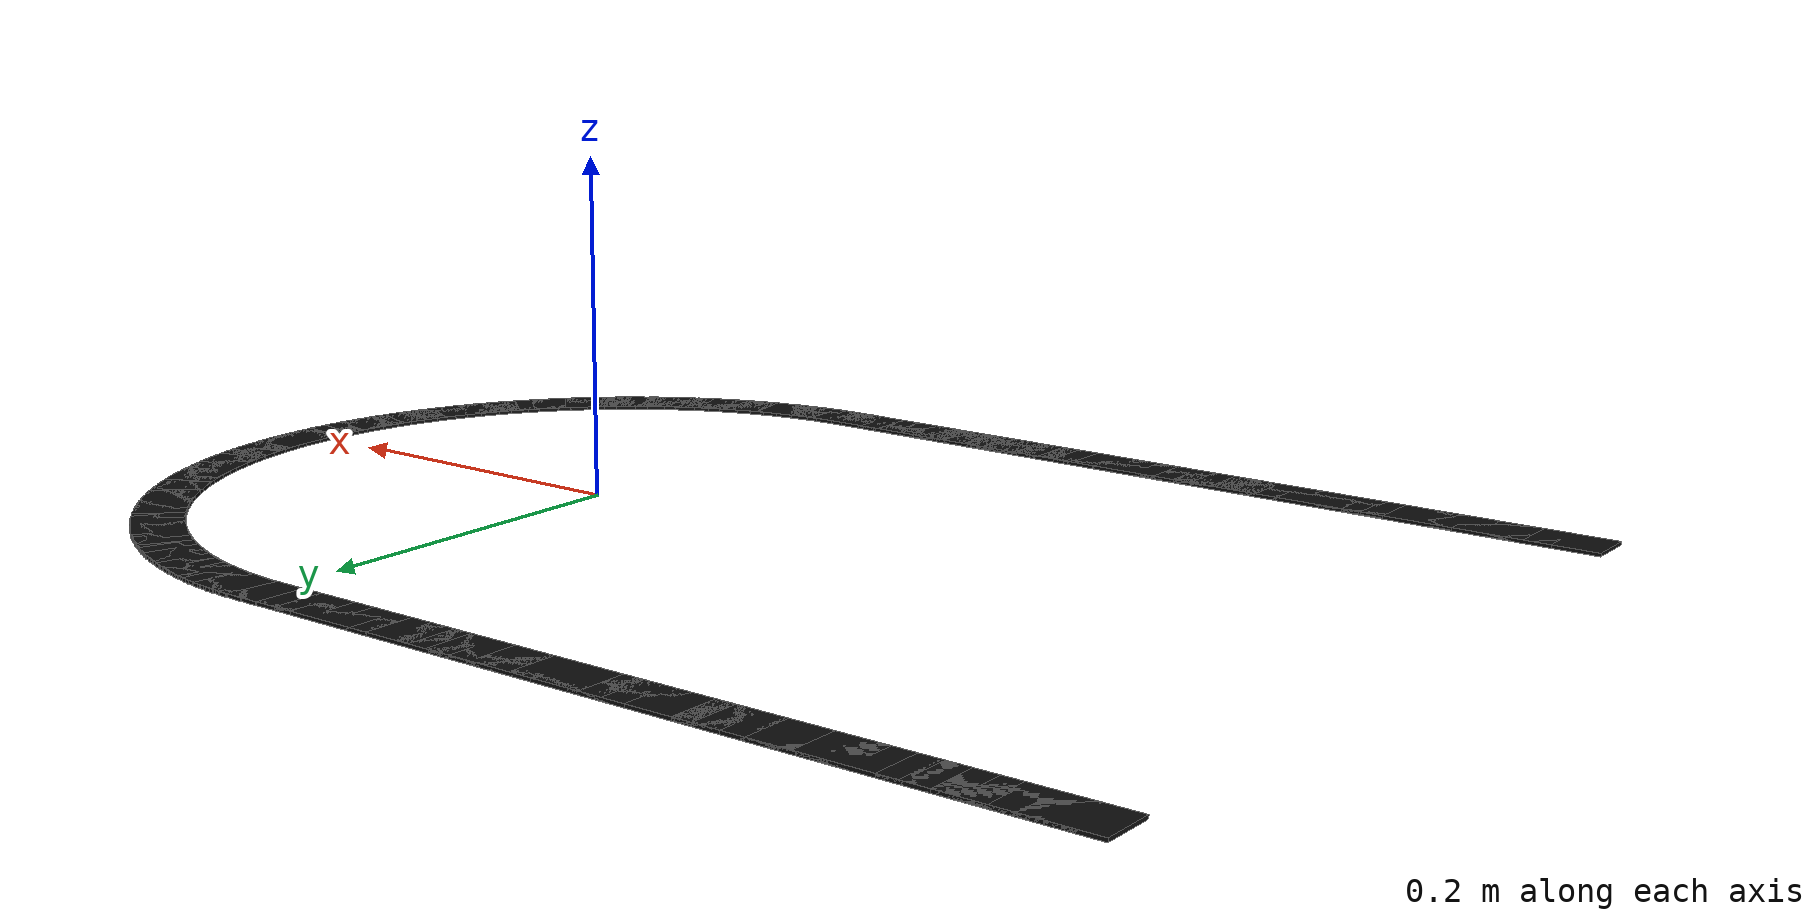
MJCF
<mujoco model="track_hairpin">
  <worldbody>
    <geom name="line_0" type="box" size="0.0219 0.015 0.001" pos="-0.4931 -0.2500 0.001" quat="1.000000 0 0 0.000000" contype="0" conaffinity="0" group="2" rgba="0.05 0.05 0.05 1"/>
    <geom name="line_1" type="box" size="0.0219 0.015 0.001" pos="-0.4792 -0.2500 0.001" quat="1.000000 0 0 0.000000" contype="0" conaffinity="0" group="2" rgba="0.05 0.05 0.05 1"/>
    <geom name="line_2" type="box" size="0.0219 0.015 0.001" pos="-0.4653 -0.2500 0.001" quat="1.000000 0 0 0.000000" contype="0" conaffinity="0" group="2" rgba="0.05 0.05 0.05 1"/>
    <geom name="line_3" type="box" size="0.0219 0.015 0.001" pos="-0.4514 -0.2500 0.001" quat="1.000000 0 0 0.000000" contype="0" conaffinity="0" group="2" rgba="0.05 0.05 0.05 1"/>
    <geom name="line_4" type="box" size="0.0219 0.015 0.001" pos="-0.4375 -0.2500 0.001" quat="1.000000 0 0 0.000000" contype="0" conaffinity="0" group="2" rgba="0.05 0.05 0.05 1"/>
    <geom name="line_5" type="box" size="0.0219 0.015 0.001" pos="-0.4236 -0.2500 0.001" quat="1.000000 0 0 0.000000" contype="0" conaffinity="0" group="2" rgba="0.05 0.05 0.05 1"/>
    <geom name="line_6" type="box" size="0.0219 0.015 0.001" pos="-0.4097 -0.2500 0.001" quat="1.000000 0 0 0.000000" contype="0" conaffinity="0" group="2" rgba="0.05 0.05 0.05 1"/>
    <geom name="line_7" type="box" size="0.0219 0.015 0.001" pos="-0.3958 -0.2500 0.001" quat="1.000000 0 0 0.000000" contype="0" conaffinity="0" group="2" rgba="0.05 0.05 0.05 1"/>
    <geom name="line_8" type="box" size="0.0219 0.015 0.001" pos="-0.3819 -0.2500 0.001" quat="1.000000 0 0 0.000000" contype="0" conaffinity="0" group="2" rgba="0.05 0.05 0.05 1"/>
    <geom name="line_9" type="box" size="0.0219 0.015 0.001" pos="-0.3681 -0.2500 0.001" quat="1.000000 0 0 0.000000" contype="0" conaffinity="0" group="2" rgba="0.05 0.05 0.05 1"/>
    <geom name="line_10" type="box" size="0.0219 0.015 0.001" pos="-0.3542 -0.2500 0.001" quat="1.000000 0 0 0.000000" contype="0" conaffinity="0" group="2" rgba="0.05 0.05 0.05 1"/>
    <geom name="line_11" type="box" size="0.0219 0.015 0.001" pos="-0.3403 -0.2500 0.001" quat="1.000000 0 0 0.000000" contype="0" conaffinity="0" group="2" rgba="0.05 0.05 0.05 1"/>
    <geom name="line_12" type="box" size="0.0219 0.015 0.001" pos="-0.3264 -0.2500 0.001" quat="1.000000 0 0 0.000000" contype="0" conaffinity="0" group="2" rgba="0.05 0.05 0.05 1"/>
    <geom name="line_13" type="box" size="0.0219 0.015 0.001" pos="-0.3125 -0.2500 0.001" quat="1.000000 0 0 0.000000" contype="0" conaffinity="0" group="2" rgba="0.05 0.05 0.05 1"/>
    <geom name="line_14" type="box" size="0.0219 0.015 0.001" pos="-0.2986 -0.2500 0.001" quat="1.000000 0 0 0.000000" contype="0" conaffinity="0" group="2" rgba="0.05 0.05 0.05 1"/>
    <geom name="line_15" type="box" size="0.0219 0.015 0.001" pos="-0.2847 -0.2500 0.001" quat="1.000000 0 0 0.000000" contype="0" conaffinity="0" group="2" rgba="0.05 0.05 0.05 1"/>
    <geom name="line_16" type="box" size="0.0219 0.015 0.001" pos="-0.2708 -0.2500 0.001" quat="1.000000 0 0 0.000000" contype="0" conaffinity="0" group="2" rgba="0.05 0.05 0.05 1"/>
    <geom name="line_17" type="box" size="0.0219 0.015 0.001" pos="-0.2569 -0.2500 0.001" quat="1.000000 0 0 0.000000" contype="0" conaffinity="0" group="2" rgba="0.05 0.05 0.05 1"/>
    <geom name="line_18" type="box" size="0.0219 0.015 0.001" pos="-0.2431 -0.2500 0.001" quat="1.000000 0 0 0.000000" contype="0" conaffinity="0" group="2" rgba="0.05 0.05 0.05 1"/>
    <geom name="line_19" type="box" size="0.0219 0.015 0.001" pos="-0.2292 -0.2500 0.001" quat="1.000000 0 0 0.000000" contype="0" conaffinity="0" group="2" rgba="0.05 0.05 0.05 1"/>
    <geom name="line_20" type="box" size="0.0219 0.015 0.001" pos="-0.2153 -0.2500 0.001" quat="1.000000 0 0 0.000000" contype="0" conaffinity="0" group="2" rgba="0.05 0.05 0.05 1"/>
    <geom name="line_21" type="box" size="0.0219 0.015 0.001" pos="-0.2014 -0.2500 0.001" quat="1.000000 0 0 0.000000" contype="0" conaffinity="0" group="2" rgba="0.05 0.05 0.05 1"/>
    <geom name="line_22" type="box" size="0.0219 0.015 0.001" pos="-0.1875 -0.2500 0.001" quat="1.000000 0 0 0.000000" contype="0" conaffinity="0" group="2" rgba="0.05 0.05 0.05 1"/>
    <geom name="line_23" type="box" size="0.0219 0.015 0.001" pos="-0.1736 -0.2500 0.001" quat="1.000000 0 0 0.000000" contype="0" conaffinity="0" group="2" rgba="0.05 0.05 0.05 1"/>
    <geom name="line_24" type="box" size="0.0219 0.015 0.001" pos="-0.1597 -0.2500 0.001" quat="1.000000 0 0 0.000000" contype="0" conaffinity="0" group="2" rgba="0.05 0.05 0.05 1"/>
    <geom name="line_25" type="box" size="0.0219 0.015 0.001" pos="-0.1458 -0.2500 0.001" quat="1.000000 0 0 0.000000" contype="0" conaffinity="0" group="2" rgba="0.05 0.05 0.05 1"/>
    <geom name="line_26" type="box" size="0.0219 0.015 0.001" pos="-0.1319 -0.2500 0.001" quat="1.000000 0 0 0.000000" contype="0" conaffinity="0" group="2" rgba="0.05 0.05 0.05 1"/>
    <geom name="line_27" type="box" size="0.0219 0.015 0.001" pos="-0.1181 -0.2500 0.001" quat="1.000000 0 0 0.000000" contype="0" conaffinity="0" group="2" rgba="0.05 0.05 0.05 1"/>
    <geom name="line_28" type="box" size="0.0219 0.015 0.001" pos="-0.1042 -0.2500 0.001" quat="1.000000 0 0 0.000000" contype="0" conaffinity="0" group="2" rgba="0.05 0.05 0.05 1"/>
    <geom name="line_29" type="box" size="0.0219 0.015 0.001" pos="-0.0903 -0.2500 0.001" quat="1.000000 0 0 0.000000" contype="0" conaffinity="0" group="2" rgba="0.05 0.05 0.05 1"/>
    <geom name="line_30" type="box" size="0.0219 0.015 0.001" pos="-0.0764 -0.2500 0.001" quat="1.000000 0 0 0.000000" contype="0" conaffinity="0" group="2" rgba="0.05 0.05 0.05 1"/>
    <geom name="line_31" type="box" size="0.0219 0.015 0.001" pos="-0.0625 -0.2500 0.001" quat="1.000000 0 0 0.000000" contype="0" conaffinity="0" group="2" rgba="0.05 0.05 0.05 1"/>
    <geom name="line_32" type="box" size="0.0219 0.015 0.001" pos="-0.0486 -0.2500 0.001" quat="1.000000 0 0 0.000000" contype="0" conaffinity="0" group="2" rgba="0.05 0.05 0.05 1"/>
    <geom name="line_33" type="box" size="0.0219 0.015 0.001" pos="-0.0347 -0.2500 0.001" quat="1.000000 0 0 0.000000" contype="0" conaffinity="0" group="2" rgba="0.05 0.05 0.05 1"/>
    <geom name="line_34" type="box" size="0.0219 0.015 0.001" pos="-0.0208 -0.2500 0.001" quat="1.000000 0 0 0.000000" contype="0" conaffinity="0" group="2" rgba="0.05 0.05 0.05 1"/>
    <geom name="line_35" type="box" size="0.0219 0.015 0.001" pos="-0.0069 -0.2500 0.001" quat="1.000000 0 0 0.000000" contype="0" conaffinity="0" group="2" rgba="0.05 0.05 0.05 1"/>
    <geom name="line_36" type="box" size="0.0205 0.015 0.001" pos="0.0055 -0.2499 0.001" quat="0.999941 0 0 0.010908" contype="0" conaffinity="0" group="2" rgba="0.05 0.05 0.05 1"/>
    <geom name="line_37" type="box" size="0.0205 0.015 0.001" pos="0.0163 -0.2494 0.001" quat="0.999465 0 0 0.032719" contype="0" conaffinity="0" group="2" rgba="0.05 0.05 0.05 1"/>
    <geom name="line_38" type="box" size="0.0205 0.015 0.001" pos="0.0272 -0.2485 0.001" quat="0.998513 0 0 0.054515" contype="0" conaffinity="0" group="2" rgba="0.05 0.05 0.05 1"/>
    <geom name="line_39" type="box" size="0.0205 0.015 0.001" pos="0.0380 -0.2470 0.001" quat="0.997086 0 0 0.076284" contype="0" conaffinity="0" group="2" rgba="0.05 0.05 0.05 1"/>
    <geom name="line_40" type="box" size="0.0205 0.015 0.001" pos="0.0488 -0.2451 0.001" quat="0.995185 0 0 0.098017" contype="0" conaffinity="0" group="2" rgba="0.05 0.05 0.05 1"/>
    <geom name="line_41" type="box" size="0.0205 0.015 0.001" pos="0.0594 -0.2428 0.001" quat="0.992810 0 0 0.119704" contype="0" conaffinity="0" group="2" rgba="0.05 0.05 0.05 1"/>
    <geom name="line_42" type="box" size="0.0205 0.015 0.001" pos="0.0699 -0.2400 0.001" quat="0.989962 0 0 0.141333" contype="0" conaffinity="0" group="2" rgba="0.05 0.05 0.05 1"/>
    <geom name="line_43" type="box" size="0.0205 0.015 0.001" pos="0.0803 -0.2367 0.001" quat="0.986643 0 0 0.162895" contype="0" conaffinity="0" group="2" rgba="0.05 0.05 0.05 1"/>
    <geom name="line_44" type="box" size="0.0205 0.015 0.001" pos="0.0906 -0.2329 0.001" quat="0.982855 0 0 0.184380" contype="0" conaffinity="0" group="2" rgba="0.05 0.05 0.05 1"/>
    <geom name="line_45" type="box" size="0.0205 0.015 0.001" pos="0.1007 -0.2288 0.001" quat="0.978599 0 0 0.205777" contype="0" conaffinity="0" group="2" rgba="0.05 0.05 0.05 1"/>
    <geom name="line_46" type="box" size="0.0205 0.015 0.001" pos="0.1105 -0.2242 0.001" quat="0.973877 0 0 0.227076" contype="0" conaffinity="0" group="2" rgba="0.05 0.05 0.05 1"/>
    <geom name="line_47" type="box" size="0.0205 0.015 0.001" pos="0.1202 -0.2191 0.001" quat="0.968692 0 0 0.248267" contype="0" conaffinity="0" group="2" rgba="0.05 0.05 0.05 1"/>
    <geom name="line_48" type="box" size="0.0205 0.015 0.001" pos="0.1297 -0.2137 0.001" quat="0.963045 0 0 0.269340" contype="0" conaffinity="0" group="2" rgba="0.05 0.05 0.05 1"/>
    <geom name="line_49" type="box" size="0.0205 0.015 0.001" pos="0.1389 -0.2078 0.001" quat="0.956940 0 0 0.290285" contype="0" conaffinity="0" group="2" rgba="0.05 0.05 0.05 1"/>
    <geom name="line_50" type="box" size="0.0205 0.015 0.001" pos="0.1478 -0.2016 0.001" quat="0.950380 0 0 0.311091" contype="0" conaffinity="0" group="2" rgba="0.05 0.05 0.05 1"/>
    <geom name="line_51" type="box" size="0.0205 0.015 0.001" pos="0.1564 -0.1949 0.001" quat="0.943368 0 0 0.331750" contype="0" conaffinity="0" group="2" rgba="0.05 0.05 0.05 1"/>
    <geom name="line_52" type="box" size="0.0205 0.015 0.001" pos="0.1648 -0.1879 0.001" quat="0.935906 0 0 0.352250" contype="0" conaffinity="0" group="2" rgba="0.05 0.05 0.05 1"/>
    <geom name="line_53" type="box" size="0.0205 0.015 0.001" pos="0.1728 -0.1805 0.001" quat="0.927999 0 0 0.372583" contype="0" conaffinity="0" group="2" rgba="0.05 0.05 0.05 1"/>
    <geom name="line_54" type="box" size="0.0205 0.015 0.001" pos="0.1805 -0.1728 0.001" quat="0.919650 0 0 0.392738" contype="0" conaffinity="0" group="2" rgba="0.05 0.05 0.05 1"/>
    <geom name="line_55" type="box" size="0.0205 0.015 0.001" pos="0.1879 -0.1648 0.001" quat="0.910864 0 0 0.412707" contype="0" conaffinity="0" group="2" rgba="0.05 0.05 0.05 1"/>
    <geom name="line_56" type="box" size="0.0205 0.015 0.001" pos="0.1949 -0.1564 0.001" quat="0.901644 0 0 0.432479" contype="0" conaffinity="0" group="2" rgba="0.05 0.05 0.05 1"/>
    <geom name="line_57" type="box" size="0.0205 0.015 0.001" pos="0.2016 -0.1478 0.001" quat="0.891995 0 0 0.452046" contype="0" conaffinity="0" group="2" rgba="0.05 0.05 0.05 1"/>
    <geom name="line_58" type="box" size="0.0205 0.015 0.001" pos="0.2078 -0.1389 0.001" quat="0.881921 0 0 0.471397" contype="0" conaffinity="0" group="2" rgba="0.05 0.05 0.05 1"/>
    <geom name="line_59" type="box" size="0.0205 0.015 0.001" pos="0.2137 -0.1297 0.001" quat="0.871428 0 0 0.490524" contype="0" conaffinity="0" group="2" rgba="0.05 0.05 0.05 1"/>
    <geom name="line_60" type="box" size="0.0205 0.015 0.001" pos="0.2191 -0.1202 0.001" quat="0.860520 0 0 0.509417" contype="0" conaffinity="0" group="2" rgba="0.05 0.05 0.05 1"/>
    <geom name="line_61" type="box" size="0.0205 0.015 0.001" pos="0.2242 -0.1105 0.001" quat="0.849202 0 0 0.528068" contype="0" conaffinity="0" group="2" rgba="0.05 0.05 0.05 1"/>
    <geom name="line_62" type="box" size="0.0205 0.015 0.001" pos="0.2288 -0.1007 0.001" quat="0.837480 0 0 0.546467" contype="0" conaffinity="0" group="2" rgba="0.05 0.05 0.05 1"/>
    <geom name="line_63" type="box" size="0.0205 0.015 0.001" pos="0.2329 -0.0906 0.001" quat="0.825360 0 0 0.564607" contype="0" conaffinity="0" group="2" rgba="0.05 0.05 0.05 1"/>
    <geom name="line_64" type="box" size="0.0205 0.015 0.001" pos="0.2367 -0.0803 0.001" quat="0.812847 0 0 0.582478" contype="0" conaffinity="0" group="2" rgba="0.05 0.05 0.05 1"/>
    <geom name="line_65" type="box" size="0.0205 0.015 0.001" pos="0.2400 -0.0699 0.001" quat="0.799947 0 0 0.600071" contype="0" conaffinity="0" group="2" rgba="0.05 0.05 0.05 1"/>
    <geom name="line_66" type="box" size="0.0205 0.015 0.001" pos="0.2428 -0.0594 0.001" quat="0.786666 0 0 0.617379" contype="0" conaffinity="0" group="2" rgba="0.05 0.05 0.05 1"/>
    <geom name="line_67" type="box" size="0.0205 0.015 0.001" pos="0.2451 -0.0488 0.001" quat="0.773010 0 0 0.634393" contype="0" conaffinity="0" group="2" rgba="0.05 0.05 0.05 1"/>
    <geom name="line_68" type="box" size="0.0205 0.015 0.001" pos="0.2470 -0.0380 0.001" quat="0.758987 0 0 0.651105" contype="0" conaffinity="0" group="2" rgba="0.05 0.05 0.05 1"/>
    <geom name="line_69" type="box" size="0.0205 0.015 0.001" pos="0.2485 -0.0272 0.001" quat="0.744603 0 0 0.667508" contype="0" conaffinity="0" group="2" rgba="0.05 0.05 0.05 1"/>
    <geom name="line_70" type="box" size="0.0205 0.015 0.001" pos="0.2494 -0.0163 0.001" quat="0.729864 0 0 0.683592" contype="0" conaffinity="0" group="2" rgba="0.05 0.05 0.05 1"/>
    <geom name="line_71" type="box" size="0.0205 0.015 0.001" pos="0.2499 -0.0055 0.001" quat="0.714778 0 0 0.699352" contype="0" conaffinity="0" group="2" rgba="0.05 0.05 0.05 1"/>
    <geom name="line_72" type="box" size="0.0205 0.015 0.001" pos="0.2499 0.0055 0.001" quat="0.699352 0 0 0.714778" contype="0" conaffinity="0" group="2" rgba="0.05 0.05 0.05 1"/>
    <geom name="line_73" type="box" size="0.0205 0.015 0.001" pos="0.2494 0.0163 0.001" quat="0.683592 0 0 0.729864" contype="0" conaffinity="0" group="2" rgba="0.05 0.05 0.05 1"/>
    <geom name="line_74" type="box" size="0.0205 0.015 0.001" pos="0.2485 0.0272 0.001" quat="0.667508 0 0 0.744603" contype="0" conaffinity="0" group="2" rgba="0.05 0.05 0.05 1"/>
    <geom name="line_75" type="box" size="0.0205 0.015 0.001" pos="0.2470 0.0380 0.001" quat="0.651105 0 0 0.758987" contype="0" conaffinity="0" group="2" rgba="0.05 0.05 0.05 1"/>
    <geom name="line_76" type="box" size="0.0205 0.015 0.001" pos="0.2451 0.0488 0.001" quat="0.634393 0 0 0.773010" contype="0" conaffinity="0" group="2" rgba="0.05 0.05 0.05 1"/>
    <geom name="line_77" type="box" size="0.0205 0.015 0.001" pos="0.2428 0.0594 0.001" quat="0.617379 0 0 0.786666" contype="0" conaffinity="0" group="2" rgba="0.05 0.05 0.05 1"/>
    <geom name="line_78" type="box" size="0.0205 0.015 0.001" pos="0.2400 0.0699 0.001" quat="0.600071 0 0 0.799947" contype="0" conaffinity="0" group="2" rgba="0.05 0.05 0.05 1"/>
    <geom name="line_79" type="box" size="0.0205 0.015 0.001" pos="0.2367 0.0803 0.001" quat="0.582478 0 0 0.812847" contype="0" conaffinity="0" group="2" rgba="0.05 0.05 0.05 1"/>
    <geom name="line_80" type="box" size="0.0205 0.015 0.001" pos="0.2329 0.0906 0.001" quat="0.564607 0 0 0.825360" contype="0" conaffinity="0" group="2" rgba="0.05 0.05 0.05 1"/>
    <geom name="line_81" type="box" size="0.0205 0.015 0.001" pos="0.2288 0.1007 0.001" quat="0.546467 0 0 0.837480" contype="0" conaffinity="0" group="2" rgba="0.05 0.05 0.05 1"/>
    <geom name="line_82" type="box" size="0.0205 0.015 0.001" pos="0.2242 0.1105 0.001" quat="0.528068 0 0 0.849202" contype="0" conaffinity="0" group="2" rgba="0.05 0.05 0.05 1"/>
    <geom name="line_83" type="box" size="0.0205 0.015 0.001" pos="0.2191 0.1202 0.001" quat="0.509417 0 0 0.860520" contype="0" conaffinity="0" group="2" rgba="0.05 0.05 0.05 1"/>
    <geom name="line_84" type="box" size="0.0205 0.015 0.001" pos="0.2137 0.1297 0.001" quat="0.490524 0 0 0.871428" contype="0" conaffinity="0" group="2" rgba="0.05 0.05 0.05 1"/>
    <geom name="line_85" type="box" size="0.0205 0.015 0.001" pos="0.2078 0.1389 0.001" quat="0.471397 0 0 0.881921" contype="0" conaffinity="0" group="2" rgba="0.05 0.05 0.05 1"/>
    <geom name="line_86" type="box" size="0.0205 0.015 0.001" pos="0.2016 0.1478 0.001" quat="0.452046 0 0 0.891995" contype="0" conaffinity="0" group="2" rgba="0.05 0.05 0.05 1"/>
    <geom name="line_87" type="box" size="0.0205 0.015 0.001" pos="0.1949 0.1564 0.001" quat="0.432479 0 0 0.901644" contype="0" conaffinity="0" group="2" rgba="0.05 0.05 0.05 1"/>
    <geom name="line_88" type="box" size="0.0205 0.015 0.001" pos="0.1879 0.1648 0.001" quat="0.412707 0 0 0.910864" contype="0" conaffinity="0" group="2" rgba="0.05 0.05 0.05 1"/>
    <geom name="line_89" type="box" size="0.0205 0.015 0.001" pos="0.1805 0.1728 0.001" quat="0.392738 0 0 0.919650" contype="0" conaffinity="0" group="2" rgba="0.05 0.05 0.05 1"/>
    <geom name="line_90" type="box" size="0.0205 0.015 0.001" pos="0.1728 0.1805 0.001" quat="0.372583 0 0 0.927999" contype="0" conaffinity="0" group="2" rgba="0.05 0.05 0.05 1"/>
    <geom name="line_91" type="box" size="0.0205 0.015 0.001" pos="0.1648 0.1879 0.001" quat="0.352250 0 0 0.935906" contype="0" conaffinity="0" group="2" rgba="0.05 0.05 0.05 1"/>
    <geom name="line_92" type="box" size="0.0205 0.015 0.001" pos="0.1564 0.1949 0.001" quat="0.331750 0 0 0.943368" contype="0" conaffinity="0" group="2" rgba="0.05 0.05 0.05 1"/>
    <geom name="line_93" type="box" size="0.0205 0.015 0.001" pos="0.1478 0.2016 0.001" quat="0.311091 0 0 0.950380" contype="0" conaffinity="0" group="2" rgba="0.05 0.05 0.05 1"/>
    <geom name="line_94" type="box" size="0.0205 0.015 0.001" pos="0.1389 0.2078 0.001" quat="0.290285 0 0 0.956940" contype="0" conaffinity="0" group="2" rgba="0.05 0.05 0.05 1"/>
    <geom name="line_95" type="box" size="0.0205 0.015 0.001" pos="0.1297 0.2137 0.001" quat="0.269340 0 0 0.963045" contype="0" conaffinity="0" group="2" rgba="0.05 0.05 0.05 1"/>
    <geom name="line_96" type="box" size="0.0205 0.015 0.001" pos="0.1202 0.2191 0.001" quat="0.248267 0 0 0.968692" contype="0" conaffinity="0" group="2" rgba="0.05 0.05 0.05 1"/>
    <geom name="line_97" type="box" size="0.0205 0.015 0.001" pos="0.1105 0.2242 0.001" quat="0.227076 0 0 0.973877" contype="0" conaffinity="0" group="2" rgba="0.05 0.05 0.05 1"/>
    <geom name="line_98" type="box" size="0.0205 0.015 0.001" pos="0.1007 0.2288 0.001" quat="0.205777 0 0 0.978599" contype="0" conaffinity="0" group="2" rgba="0.05 0.05 0.05 1"/>
    <geom name="line_99" type="box" size="0.0205 0.015 0.001" pos="0.0906 0.2329 0.001" quat="0.184380 0 0 0.982855" contype="0" conaffinity="0" group="2" rgba="0.05 0.05 0.05 1"/>
    <geom name="line_100" type="box" size="0.0205 0.015 0.001" pos="0.0803 0.2367 0.001" quat="0.162895 0 0 0.986643" contype="0" conaffinity="0" group="2" rgba="0.05 0.05 0.05 1"/>
    <geom name="line_101" type="box" size="0.0205 0.015 0.001" pos="0.0699 0.2400 0.001" quat="0.141333 0 0 0.989962" contype="0" conaffinity="0" group="2" rgba="0.05 0.05 0.05 1"/>
    <geom name="line_102" type="box" size="0.0205 0.015 0.001" pos="0.0594 0.2428 0.001" quat="0.119704 0 0 0.992810" contype="0" conaffinity="0" group="2" rgba="0.05 0.05 0.05 1"/>
    <geom name="line_103" type="box" size="0.0205 0.015 0.001" pos="0.0488 0.2451 0.001" quat="0.098017 0 0 0.995185" contype="0" conaffinity="0" group="2" rgba="0.05 0.05 0.05 1"/>
    <geom name="line_104" type="box" size="0.0205 0.015 0.001" pos="0.0380 0.2470 0.001" quat="0.076284 0 0 0.997086" contype="0" conaffinity="0" group="2" rgba="0.05 0.05 0.05 1"/>
    <geom name="line_105" type="box" size="0.0205 0.015 0.001" pos="0.0272 0.2485 0.001" quat="0.054515 0 0 0.998513" contype="0" conaffinity="0" group="2" rgba="0.05 0.05 0.05 1"/>
    <geom name="line_106" type="box" size="0.0205 0.015 0.001" pos="0.0163 0.2494 0.001" quat="0.032719 0 0 0.999465" contype="0" conaffinity="0" group="2" rgba="0.05 0.05 0.05 1"/>
    <geom name="line_107" type="box" size="0.0205 0.015 0.001" pos="0.0055 0.2499 0.001" quat="0.010908 0 0 0.999941" contype="0" conaffinity="0" group="2" rgba="0.05 0.05 0.05 1"/>
    <geom name="line_108" type="box" size="0.0219 0.015 0.001" pos="-0.0069 0.2500 0.001" quat="0.000000 0 0 1.000000" contype="0" conaffinity="0" group="2" rgba="0.05 0.05 0.05 1"/>
    <geom name="line_109" type="box" size="0.0219 0.015 0.001" pos="-0.0208 0.2500 0.001" quat="0.000000 0 0 1.000000" contype="0" conaffinity="0" group="2" rgba="0.05 0.05 0.05 1"/>
    <geom name="line_110" type="box" size="0.0219 0.015 0.001" pos="-0.0347 0.2500 0.001" quat="0.000000 0 0 1.000000" contype="0" conaffinity="0" group="2" rgba="0.05 0.05 0.05 1"/>
    <geom name="line_111" type="box" size="0.0219 0.015 0.001" pos="-0.0486 0.2500 0.001" quat="0.000000 0 0 1.000000" contype="0" conaffinity="0" group="2" rgba="0.05 0.05 0.05 1"/>
    <geom name="line_112" type="box" size="0.0219 0.015 0.001" pos="-0.0625 0.2500 0.001" quat="0.000000 0 0 1.000000" contype="0" conaffinity="0" group="2" rgba="0.05 0.05 0.05 1"/>
    <geom name="line_113" type="box" size="0.0219 0.015 0.001" pos="-0.0764 0.2500 0.001" quat="0.000000 0 0 1.000000" contype="0" conaffinity="0" group="2" rgba="0.05 0.05 0.05 1"/>
    <geom name="line_114" type="box" size="0.0219 0.015 0.001" pos="-0.0903 0.2500 0.001" quat="0.000000 0 0 1.000000" contype="0" conaffinity="0" group="2" rgba="0.05 0.05 0.05 1"/>
    <geom name="line_115" type="box" size="0.0219 0.015 0.001" pos="-0.1042 0.2500 0.001" quat="0.000000 0 0 1.000000" contype="0" conaffinity="0" group="2" rgba="0.05 0.05 0.05 1"/>
    <geom name="line_116" type="box" size="0.0219 0.015 0.001" pos="-0.1181 0.2500 0.001" quat="0.000000 0 0 1.000000" contype="0" conaffinity="0" group="2" rgba="0.05 0.05 0.05 1"/>
    <geom name="line_117" type="box" size="0.0219 0.015 0.001" pos="-0.1319 0.2500 0.001" quat="0.000000 0 0 1.000000" contype="0" conaffinity="0" group="2" rgba="0.05 0.05 0.05 1"/>
    <geom name="line_118" type="box" size="0.0219 0.015 0.001" pos="-0.1458 0.2500 0.001" quat="0.000000 0 0 1.000000" contype="0" conaffinity="0" group="2" rgba="0.05 0.05 0.05 1"/>
    <geom name="line_119" type="box" size="0.0219 0.015 0.001" pos="-0.1597 0.2500 0.001" quat="0.000000 0 0 1.000000" contype="0" conaffinity="0" group="2" rgba="0.05 0.05 0.05 1"/>
    <geom name="line_120" type="box" size="0.0219 0.015 0.001" pos="-0.1736 0.2500 0.001" quat="0.000000 0 0 1.000000" contype="0" conaffinity="0" group="2" rgba="0.05 0.05 0.05 1"/>
    <geom name="line_121" type="box" size="0.0219 0.015 0.001" pos="-0.1875 0.2500 0.001" quat="0.000000 0 0 1.000000" contype="0" conaffinity="0" group="2" rgba="0.05 0.05 0.05 1"/>
    <geom name="line_122" type="box" size="0.0219 0.015 0.001" pos="-0.2014 0.2500 0.001" quat="0.000000 0 0 1.000000" contype="0" conaffinity="0" group="2" rgba="0.05 0.05 0.05 1"/>
    <geom name="line_123" type="box" size="0.0219 0.015 0.001" pos="-0.2153 0.2500 0.001" quat="0.000000 0 0 1.000000" contype="0" conaffinity="0" group="2" rgba="0.05 0.05 0.05 1"/>
    <geom name="line_124" type="box" size="0.0219 0.015 0.001" pos="-0.2292 0.2500 0.001" quat="0.000000 0 0 1.000000" contype="0" conaffinity="0" group="2" rgba="0.05 0.05 0.05 1"/>
    <geom name="line_125" type="box" size="0.0219 0.015 0.001" pos="-0.2431 0.2500 0.001" quat="0.000000 0 0 1.000000" contype="0" conaffinity="0" group="2" rgba="0.05 0.05 0.05 1"/>
    <geom name="line_126" type="box" size="0.0219 0.015 0.001" pos="-0.2569 0.2500 0.001" quat="0.000000 0 0 1.000000" contype="0" conaffinity="0" group="2" rgba="0.05 0.05 0.05 1"/>
    <geom name="line_127" type="box" size="0.0219 0.015 0.001" pos="-0.2708 0.2500 0.001" quat="0.000000 0 0 1.000000" contype="0" conaffinity="0" group="2" rgba="0.05 0.05 0.05 1"/>
    <geom name="line_128" type="box" size="0.0219 0.015 0.001" pos="-0.2847 0.2500 0.001" quat="0.000000 0 0 1.000000" contype="0" conaffinity="0" group="2" rgba="0.05 0.05 0.05 1"/>
    <geom name="line_129" type="box" size="0.0219 0.015 0.001" pos="-0.2986 0.2500 0.001" quat="0.000000 0 0 1.000000" contype="0" conaffinity="0" group="2" rgba="0.05 0.05 0.05 1"/>
    <geom name="line_130" type="box" size="0.0219 0.015 0.001" pos="-0.3125 0.2500 0.001" quat="0.000000 0 0 1.000000" contype="0" conaffinity="0" group="2" rgba="0.05 0.05 0.05 1"/>
    <geom name="line_131" type="box" size="0.0219 0.015 0.001" pos="-0.3264 0.2500 0.001" quat="0.000000 0 0 1.000000" contype="0" conaffinity="0" group="2" rgba="0.05 0.05 0.05 1"/>
    <geom name="line_132" type="box" size="0.0219 0.015 0.001" pos="-0.3403 0.2500 0.001" quat="0.000000 0 0 1.000000" contype="0" conaffinity="0" group="2" rgba="0.05 0.05 0.05 1"/>
    <geom name="line_133" type="box" size="0.0219 0.015 0.001" pos="-0.3542 0.2500 0.001" quat="0.000000 0 0 1.000000" contype="0" conaffinity="0" group="2" rgba="0.05 0.05 0.05 1"/>
    <geom name="line_134" type="box" size="0.0219 0.015 0.001" pos="-0.3681 0.2500 0.001" quat="0.000000 0 0 1.000000" contype="0" conaffinity="0" group="2" rgba="0.05 0.05 0.05 1"/>
    <geom name="line_135" type="box" size="0.0219 0.015 0.001" pos="-0.3819 0.2500 0.001" quat="0.000000 0 0 1.000000" contype="0" conaffinity="0" group="2" rgba="0.05 0.05 0.05 1"/>
    <geom name="line_136" type="box" size="0.0219 0.015 0.001" pos="-0.3958 0.2500 0.001" quat="0.000000 0 0 1.000000" contype="0" conaffinity="0" group="2" rgba="0.05 0.05 0.05 1"/>
    <geom name="line_137" type="box" size="0.0219 0.015 0.001" pos="-0.4097 0.2500 0.001" quat="0.000000 0 0 1.000000" contype="0" conaffinity="0" group="2" rgba="0.05 0.05 0.05 1"/>
    <geom name="line_138" type="box" size="0.0219 0.015 0.001" pos="-0.4236 0.2500 0.001" quat="0.000000 0 0 1.000000" contype="0" conaffinity="0" group="2" rgba="0.05 0.05 0.05 1"/>
    <geom name="line_139" type="box" size="0.0219 0.015 0.001" pos="-0.4375 0.2500 0.001" quat="0.000000 0 0 1.000000" contype="0" conaffinity="0" group="2" rgba="0.05 0.05 0.05 1"/>
    <geom name="line_140" type="box" size="0.0219 0.015 0.001" pos="-0.4514 0.2500 0.001" quat="0.000000 0 0 1.000000" contype="0" conaffinity="0" group="2" rgba="0.05 0.05 0.05 1"/>
    <geom name="line_141" type="box" size="0.0219 0.015 0.001" pos="-0.4653 0.2500 0.001" quat="0.000000 0 0 1.000000" contype="0" conaffinity="0" group="2" rgba="0.05 0.05 0.05 1"/>
    <geom name="line_142" type="box" size="0.0219 0.015 0.001" pos="-0.4792 0.2500 0.001" quat="0.000000 0 0 1.000000" contype="0" conaffinity="0" group="2" rgba="0.05 0.05 0.05 1"/>
    <geom name="line_143" type="box" size="0.0219 0.015 0.001" pos="-0.4931 0.2500 0.001" quat="0.000000 0 0 1.000000" contype="0" conaffinity="0" group="2" rgba="0.05 0.05 0.05 1"/>
  </worldbody>
</mujoco>
